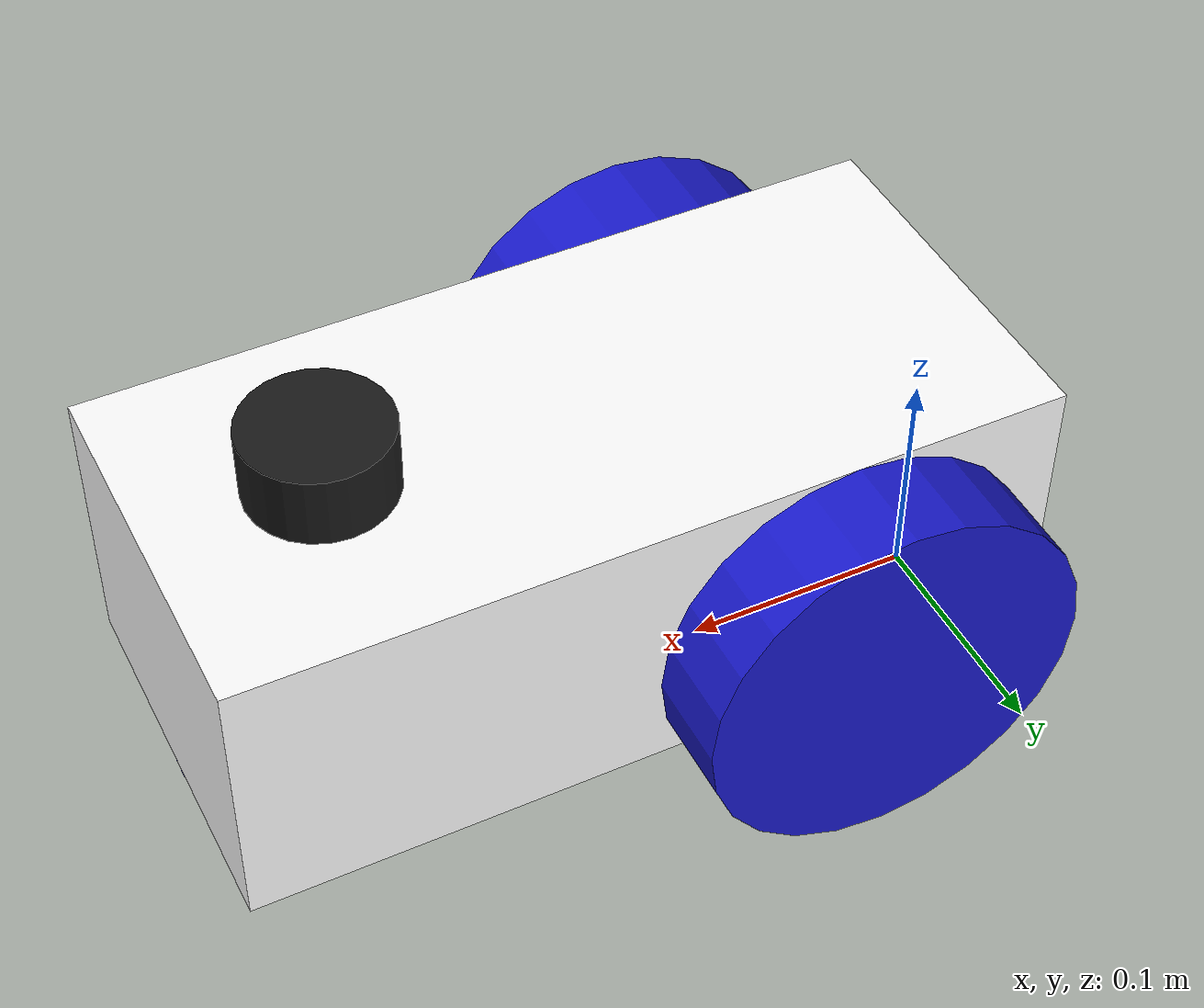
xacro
<?xml version="1.0"?>
<robot xmlns:xacro="http://www.ros.org/wiki/xacro" name="gz_example_robot">

<xacro:property name="chassis_width"    value="0.16" />
<xacro:property name="chassis_length"   value="0.34" />
<xacro:property name="chassis_height"   value="0.12" />
<xacro:property name="wheel_separation" value="0.20" />
<xacro:property name="wheel_radius"     value="0.08" />
<xacro:property name="wheel_offset"     value="${wheel_radius/4}" />
<xacro:property name="wheel_width"      value="0.04" />
<xacro:property name="sphere_radius"    value="${wheel_radius+wheel_offset-(chassis_height/2)}" />
<xacro:property name="base_offset"      value="0.08" />
<xacro:property name="footprint_z"      value="${chassis_height/2 + sphere_radius}" />
<xacro:property name="control_config"   value="$(find gz_example_robot_description)/config/diff_drive_control.yaml" />

  <!-- LINKS -->
  <link name="base_footprint"/>

  <link name="base_link">
    <visual>
      <geometry>
        <box size="${chassis_length} ${chassis_width} ${chassis_height}"/>
      </geometry>
      <origin rpy="0 0 0" xyz="${base_offset} 0 0"/>
      <material name="white">
        <color rgba="1 1 1 1"/>
      </material>
    </visual>

    <collision>
      <geometry>
        <box size="${chassis_length} ${chassis_width} ${chassis_height}"/>
      </geometry>
      <origin rpy="0 0 0" xyz="${base_offset} 0 0"/>
    </collision>

    <inertial>
      <origin xyz="${(chassis_length/2)+base_offset} 0 ${chassis_height/2}" rpy="0 0 0"/>
      <mass value="2"/>
      <inertia ixx="0.126" ixy="0.0" ixz="0.0" iyy="0.4116" iyz="0.0" izz="0.481"/>
    </inertial>
  </link>

  <link name="left_wheel">
    <visual>
      <geometry>
        <cylinder length="${wheel_width}" radius="${wheel_radius}" />
      </geometry>
      <origin rpy="0 0 0" xyz="0 0 0"/>
      <material name="blue">
        <color rgba="0.1 0.1 0.8 1"/>
      </material>
    </visual>

    <collision>
      <geometry>
        <cylinder length="${wheel_width}" radius="${wheel_radius}" />
      </geometry>
      <origin rpy="0 0 0" xyz="0 0 0"/>
    </collision>

    <inertial>
      <mass value="1"/>
      <inertia ixx="0.002" ixy="0.0" ixz="0.0" iyy="0.002" iyz="0.0" izz="0.0032"/>
    </inertial>
  </link>

  <link name="right_wheel">
    <visual>
      <geometry>
        <cylinder length="${wheel_width}" radius="${wheel_radius}" />
      </geometry>
      <origin rpy="0 0 0" xyz="0 0 0"/>
      <material name="blue">
        <color rgba="0.1 0.1 0.8 1"/>
      </material>
    </visual>

    <collision>
      <geometry>
        <cylinder length="${wheel_width}" radius="${wheel_radius}" />
      </geometry>
      <origin rpy="0 0 0" xyz="0 0 0"/>
    </collision>

    <inertial>
      <mass value="1"/>
      <inertia ixx="0.002" ixy="0.0" ixz="0.0" iyy="0.002" iyz="0.0" izz="0.0032"/>
    </inertial>
  </link>

  <link name="front_wheel">
    <visual>
      <geometry>
        <sphere radius="${sphere_radius}" />
      </geometry>
      <origin rpy="0 0 0" xyz="0 0 0"/>
      <material name="blue">
        <color rgba="0.1 0.1 0.8 1"/>
      </material>
    </visual>

    <collision>
      <geometry>
        <sphere radius="${sphere_radius}" />
      </geometry>
      <origin rpy="0 0 0" xyz="0 0 0"/>
    </collision>

    <inertial>
      <mass value="0.1"/>
      <inertia ixx="0.00016" ixy="0.0" ixz="0.0" iyy="0.00016" iyz="0.0" izz="0.00016"/>
    </inertial>
  </link>

  <link name="chassis_link">
  <!-- Convenient place to reference sensors to -->
  </link>

  <link name="imu_link">
  <!-- Frame to attach an IMU to -->
  </link>

  <link name="rgbd_link">
  <!-- Frame to attach an RGBD camera to -->
  </link>

  <link name="lidar_link">
    <visual>
      <geometry>
        <cylinder length="0.03" radius="0.03" />
      </geometry>
      <origin rpy="0 0 0" xyz="0 0 -0.005"/>
      <material name="black">
        <color rgba="0.1 0.1 0.1 1"/>
      </material>
    </visual>

    <collision>
      <geometry>
        <cylinder length="0.03" radius="0.03" />
      </geometry>
      <origin rpy="0 0 0" xyz="0 0 -0.005"/>
    </collision>

    <inertial>
      <mass value="0.1"/>
      <inertia ixx="0.0005" ixy="0.0" ixz="0.0" iyy="0.0005" iyz="0.0" izz="0.00045"/>
    </inertial>
  </link>

  <!-- JOINTS -->
  <joint name="base_footprint_joint" type="fixed">
    <parent link="base_footprint"/>
    <child link="base_link"/>
    <origin xyz="${base_offset} 0 ${footprint_z}" rpy="0 0 0"/>
  </joint>

  <joint name="left_wheel_joint" type="continuous">
    <parent link="base_link"/>
    <child link="left_wheel"/>
    <origin xyz="0 ${wheel_separation/2} -${wheel_offset}" rpy="-${pi/2} 0 0"/>
    <axis xyz="0 0 1"/>
  </joint>

  <joint name="right_wheel_joint" type="continuous">
    <parent link="base_link"/>
    <child link="right_wheel"/>
    <origin xyz="0 -${wheel_separation/2} -${wheel_offset}" rpy="-${pi/2} 0 0"/>
    <axis xyz="0 0 1"/>
  </joint>

  <joint name="front_wheel_joint" type="fixed">
    <parent link="base_link"/>
    <child link="front_wheel"/>
    <origin xyz="${base_offset + (chassis_length/2) - sphere_radius} 0 -${chassis_height/2}" rpy="0 0 0"/>
  </joint>

  <joint name="chassis_joint" type="fixed">
    <parent link="base_link"/>
    <child link="chassis_link"/>
    <origin xyz="${base_offset} 0 ${chassis_height/2}" rpy="0 0 0"/>
  </joint>

  <joint name="imu_joint" type="fixed">
    <parent link="base_link"/>
    <child link="imu_link"/>
    <origin xyz="0 0 0" rpy="0 0 0"/>
  </joint>

  <joint name="lidar_joint" type="fixed">
    <parent link="chassis_link"/>
    <child link="lidar_link"/>
    <origin xyz="0.1 0 0.02" rpy="0 0 0"/>
  </joint>

  <joint name="rgbd_joint" type="fixed">
    <parent link="chassis_link"/>
    <child link="rgbd_link"/>
    <origin xyz="${chassis_length/2} 0 -${chassis_height/2}" rpy="0 0 0"/>
  </joint>

  <!-- GAZEBO PLUGINS -->
  <!-- Differential Drive - https://gazebosim.org/api/gazebo/4.5/classignition_1_1gazebo_1_1systems_1_1DiffDrive.html -->
  <gazebo>
    <plugin filename="ignition-gazebo-diff-drive-system" name="ignition::gazebo::systems::DiffDrive">
      <!-- Wheel Joints -->
      <left_joint>left_wheel_joint</left_joint>
      <right_joint>right_wheel_joint</right_joint>

      <!-- Kinematics -->
      <wheel_separation>${wheel_separation}</wheel_separation>
      <wheel_radius>${wheel_radius}</wheel_radius>

      <odom_publish_frequency>50</odom_publish_frequency>

      <!-- TF Frames -->
      <frame_id>/odom</frame_id>
      <child_frame_id>/base_footprint</child_frame_id>

      <!-- topics -->
    </plugin>
  </gazebo>

  <gazebo>
      <plugin filename="ignition-gazebo-joint-state-publisher-system" name="ignition::gazebo::systems::JointStatePublisher">
        <update_rate>50</update_rate>
        <joint_name>left_wheel_joint</joint_name>
        <joint_name>right_wheel_joint</joint_name>
      </plugin>
  </gazebo>

  <gazebo reference="front_wheel">
    <mu1 value="0.001"/>
    <mu2 value="0.001"/>
  </gazebo>

  <gazebo reference="right_wheel">
    <mu1 value="1.0"/>
    <mu2 value="1.0"/>

  </gazebo>

  <gazebo reference="left_wheel">
    <mu1 value="1.0"/>
    <mu2 value="1.0"/>
  </gazebo>

  <gazebo reference="lidar_link">
    <sensor type="gpu_lidar" name="generic_lidar_sensor">

      <topic>/model/gz_example_robot/scan</topic>
      <frame_id>lidar_link</frame_id>
      <ignition_frame_id>lidar_link</ignition_frame_id>

      <update_rate>10.0</update_rate>
      <ray>
        <scan>
          <horizontal>
            <samples>512</samples>
            <resolution>1</resolution>
            <min_angle>-${pi*0.75}</min_angle>
            <max_angle>${pi*0.75}</max_angle>
          </horizontal>
        </scan>
        <range>
          <min>0.10</min>
          <max>10.0</max>
          <resolution>0.03</resolution>
        </range>
        <noise>
          <type>gaussian</type>
          <mean>0.0</mean>
          <stddev>0.001</stddev>
        </noise>
      </ray>
      <always_on>1</always_on>
      <visualize>false</visualize>
    </sensor>
  </gazebo>
  <gazebo>
    <plugin filename="libignition-gazebo-sensors-system.so" name="ignition::gazebo::systems::Sensors">
      <render_engine>ogre2</render_engine>
    </plugin>
  </gazebo>

  <gazebo reference="imu_link">
    <sensor name="imu_sensor" type="imu">
      <topic>/model/gz_example_robot/imu</topic>
      <frame_id>imu_link</frame_id>
      <ignition_frame_id>imu_link</ignition_frame_id>
      <plugin filename="libignition-gazebo-imu-system.so" name="ignition::gazebo::systems::Imu">
        <initial_orientation_as_reference>false</initial_orientation_as_reference>
      </plugin>
      <always_on>true</always_on>
      <update_rate>100</update_rate>
      <visualize>true</visualize>
     <imu>
     	<angular_velocity>
     	  <x>
     	    <noise type="gaussian">
              <mean>0.0</mean>
              <stddev>2e-4</stddev>
              <bias_mean>0.0000075</bias_mean>
              <bias_stddev>0.0000008</bias_stddev>
            </noise>
          </x>
          <y>
            <noise type="gaussian">
              <mean>0.0</mean>
              <stddev>2e-4</stddev>
              <bias_mean>0.0000075</bias_mean>
              <bias_stddev>0.0000008</bias_stddev>
            </noise>
          </y>
          <z>
            <noise type="gaussian">
              <mean>0.0</mean>
              <stddev>2e-4</stddev>
              <bias_mean>0.0000075</bias_mean>
              <bias_stddev>0.0000008</bias_stddev>
            </noise>
          </z>
        </angular_velocity>
        <linear_acceleration>
          <x>
            <noise type="gaussian">
              <mean>0.0</mean>
              <stddev>1.7e-2</stddev>
              <bias_mean>0.1</bias_mean>
              <bias_stddev>0.001</bias_stddev>
            </noise>
          </x>
          <y>
            <noise type="gaussian">
              <mean>0.0</mean>
              <stddev>1.7e-2</stddev>
              <bias_mean>0.1</bias_mean>
              <bias_stddev>0.001</bias_stddev>
            </noise>
          </y>
          <z>
            <noise type="gaussian">
              <mean>0.0</mean>
              <stddev>1.7e-2</stddev>
              <bias_mean>0.1</bias_mean>
              <bias_stddev>0.001</bias_stddev>
            </noise>
          </z>
        </linear_acceleration>
      </imu>
    </sensor>
  </gazebo>

</robot>
